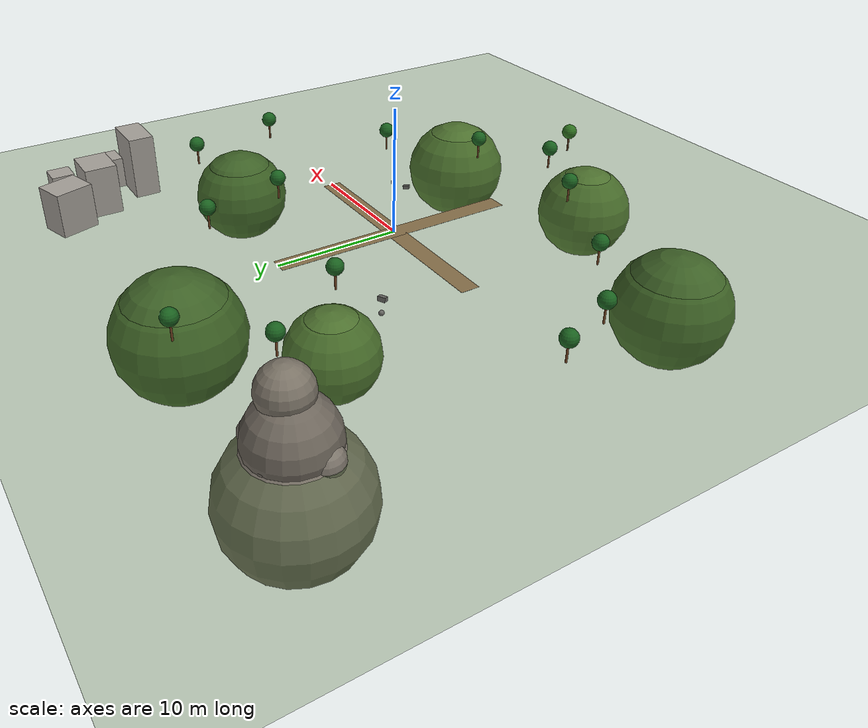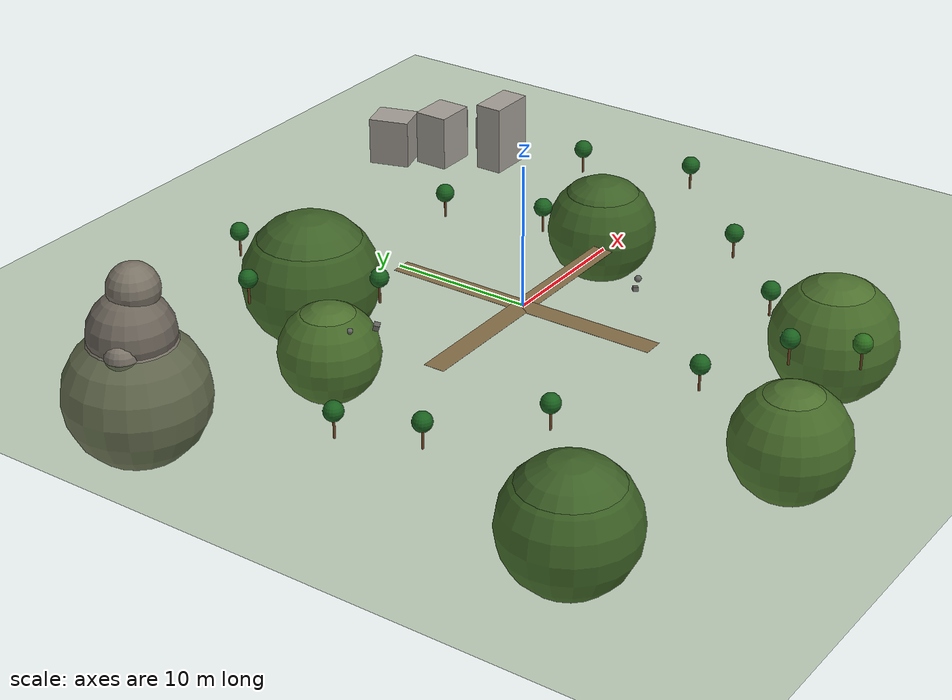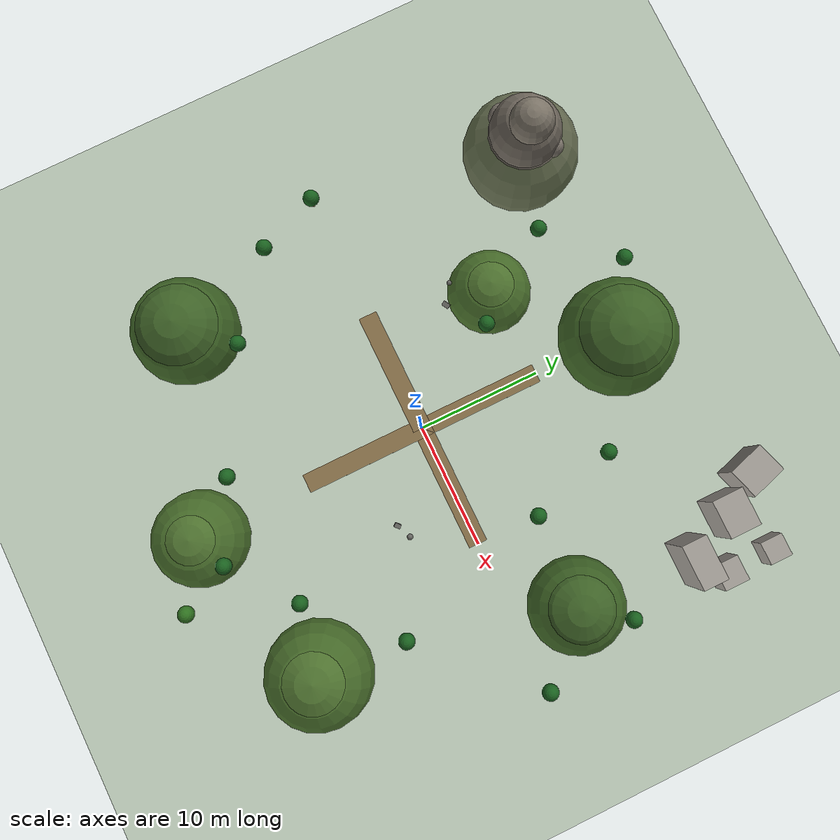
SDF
<?xml version="1.0" ?>
<sdf version="1.6">
  <world name="dah_outdoor">

    <physics name="1ms" type="ignored">
      <max_step_size>0.001</max_step_size>
      <real_time_factor>1.0</real_time_factor>
    </physics>

    <plugin filename="ignition-gazebo-physics-system"           name="gz::sim::systems::Physics"/>
    <plugin filename="ignition-gazebo-sensors-system"           name="gz::sim::systems::Sensors"/>
    <plugin filename="ignition-gazebo-scene-broadcaster-system" name="gz::sim::systems::SceneBroadcaster"/>
    <plugin filename="ignition-gazebo-user-commands-system"     name="gz::sim::systems::UserCommands"/>
    <plugin filename="ignition-gazebo-imu-system"               name="gz::sim::systems::Imu"/>
    <plugin filename="ignition-gazebo-contact-system"           name="gz::sim::systems::Contact"/>

    <spherical_coordinates>
      <surface_model>EARTH_WGS84</surface_model>
      <world_frame_orientation>ENU</world_frame_orientation>
      <latitude_deg>37.5665</latitude_deg>
      <longitude_deg>126.9780</longitude_deg>
      <elevation>50</elevation>
      <heading_deg>0</heading_deg>
    </spherical_coordinates>

    <light type="directional" name="sun">
      <cast_shadows>true</cast_shadows>
      <pose>0 0 30 0 0 0</pose>
      <diffuse>1.0 0.95 0.85 1</diffuse>
      <specular>0.2 0.2 0.2 1</specular>
      <direction>-0.4 0.2 -0.8</direction>
    </light>

    <!-- Ground plane 50x50m -->
    <model name="ground_plane">
      <static>true</static>
      <link name="link">
        <collision name="col">
          <geometry>
            <plane><normal>0 0 1</normal><size>50 50</size></plane>
          </geometry>
        </collision>
        <visual name="vis">
          <geometry>
            <plane><normal>0 0 1</normal><size>50 50</size></plane>
          </geometry>
          <material>
            <ambient>0.25 0.40 0.15 1</ambient>
            <diffuse>0.27 0.42 0.17 1</diffuse>
          </material>
        </visual>
      </link>
    </model>

    <!-- 아래부터 hills, trees, rocks, paths 모델 추가 -->
    <!-- 절대로 두 model 태그를 겹치거나 하나의 model 안에 다른 model 열지 말 것 -->

    <model name="hill_north">
      <static>true</static>
      <pose>0 18 -3.3 0 0 0</pose>
      <link name="link">
        <collision name="col">
          <geometry>
            <sphere><radius>5.0</radius></sphere>
          </geometry>
        </collision>
        <visual name="vis">
          <geometry>
            <sphere><radius>5.0</radius></sphere>
          </geometry>
          <material>
            <ambient>0.22 0.36 0.13 1</ambient>
            <diffuse>0.24 0.38 0.15 1</diffuse>
          </material>
        </visual>
      </link>
    </model>

    <model name="hill_sw">
      <static>true</static>
      <pose>-16 -14 -3.0 0 0 0</pose>
      <link name="link">
        <collision name="col">
          <geometry>
            <sphere><radius>4.5</radius></sphere>
          </geometry>
        </collision>
        <visual name="vis">
          <geometry>
            <sphere><radius>4.5</radius></sphere>
          </geometry>
          <material>
            <ambient>0.22 0.36 0.13 1</ambient>
            <diffuse>0.24 0.38 0.15 1</diffuse>
          </material>
        </visual>
      </link>
    </model>

    <model name="hill_east">
      <static>true</static>
      <pose>18 5 -3.0 0 0 0</pose>
      <link name="link">
        <collision name="col">
          <geometry>
            <sphere><radius>4.0</radius></sphere>
          </geometry>
        </collision>
        <visual name="vis">
          <geometry>
            <sphere><radius>4.0</radius></sphere>
          </geometry>
          <material>
            <ambient>0.22 0.36 0.13 1</ambient>
            <diffuse>0.24 0.38 0.15 1</diffuse>
          </material>
        </visual>
      </link>
    </model>

    <model name="tree_01">
      <static>true</static>
      <pose>8 12 0 0 0 0</pose>
      <link name="trunk">
        <pose>0 0 0.7 0 0 0</pose>
        <collision name="col">
          <geometry>
            <cylinder><radius>0.08</radius><length>1.4</length></cylinder>
          </geometry>
        </collision>
        <visual name="vis">
          <geometry>
            <cylinder><radius>0.08</radius><length>1.4</length></cylinder>
          </geometry>
          <material>
            <ambient>0.36 0.22 0.10 1</ambient>
            <diffuse>0.42 0.25 0.12 1</diffuse>
          </material>
        </visual>
      </link>
      <link name="canopy">
        <pose>0 0 1.85 0 0 0</pose>
        <collision name="col">
          <geometry>
            <sphere><radius>0.65</radius></sphere>
          </geometry>
        </collision>
        <visual name="vis">
          <geometry>
            <sphere><radius>0.65</radius></sphere>
          </geometry>
          <material>
            <ambient>0.08 0.32 0.10 1</ambient>
            <diffuse>0.10 0.38 0.12 1</diffuse>
          </material>
        </visual>
      </link>
    </model>

    <model name="tree_02">
      <static>true</static>
      <pose>-10 15 0 0 0 0</pose>
      <link name="trunk">
        <pose>0 0 0.7 0 0 0</pose>
        <collision name="col">
          <geometry>
            <cylinder><radius>0.08</radius><length>1.4</length></cylinder>
          </geometry>
        </collision>
        <visual name="vis">
          <geometry>
            <cylinder><radius>0.08</radius><length>1.4</length></cylinder>
          </geometry>
          <material>
            <ambient>0.36 0.22 0.10 1</ambient>
            <diffuse>0.42 0.25 0.12 1</diffuse>
          </material>
        </visual>
      </link>
      <link name="canopy">
        <pose>0 0 1.85 0 0 0</pose>
        <collision name="col">
          <geometry>
            <sphere><radius>0.65</radius></sphere>
          </geometry>
        </collision>
        <visual name="vis">
          <geometry>
            <sphere><radius>0.65</radius></sphere>
          </geometry>
          <material>
            <ambient>0.08 0.32 0.10 1</ambient>
            <diffuse>0.10 0.38 0.12 1</diffuse>
          </material>
        </visual>
      </link>
    </model>

    <model name="tree_03">
      <static>true</static>
      <pose>14 -8 0 0 0 0</pose>
      <link name="trunk">
        <pose>0 0 0.7 0 0 0</pose>
        <collision name="col">
          <geometry>
            <cylinder><radius>0.08</radius><length>1.4</length></cylinder>
          </geometry>
        </collision>
        <visual name="vis">
          <geometry>
            <cylinder><radius>0.08</radius><length>1.4</length></cylinder>
          </geometry>
          <material>
            <ambient>0.36 0.22 0.10 1</ambient>
            <diffuse>0.42 0.25 0.12 1</diffuse>
          </material>
        </visual>
      </link>
      <link name="canopy">
        <pose>0 0 1.85 0 0 0</pose>
        <collision name="col">
          <geometry>
            <sphere><radius>0.65</radius></sphere>
          </geometry>
        </collision>
        <visual name="vis">
          <geometry>
            <sphere><radius>0.65</radius></sphere>
          </geometry>
          <material>
            <ambient>0.08 0.32 0.10 1</ambient>
            <diffuse>0.10 0.38 0.12 1</diffuse>
          </material>
        </visual>
      </link>
    </model>

    <model name="tree_04">
      <static>true</static>
      <pose>-12 -10 0 0 0 0</pose>
      <link name="trunk">
        <pose>0 0 0.7 0 0 0</pose>
        <collision name="col">
          <geometry>
            <cylinder><radius>0.08</radius><length>1.4</length></cylinder>
          </geometry>
        </collision>
        <visual name="vis">
          <geometry>
            <cylinder><radius>0.08</radius><length>1.4</length></cylinder>
          </geometry>
          <material>
            <ambient>0.36 0.22 0.10 1</ambient>
            <diffuse>0.42 0.25 0.12 1</diffuse>
          </material>
        </visual>
      </link>
      <link name="canopy">
        <pose>0 0 1.85 0 0 0</pose>
        <collision name="col">
          <geometry>
            <sphere><radius>0.65</radius></sphere>
          </geometry>
        </collision>
        <visual name="vis">
          <geometry>
            <sphere><radius>0.65</radius></sphere>
          </geometry>
          <material>
            <ambient>0.08 0.32 0.10 1</ambient>
            <diffuse>0.10 0.38 0.12 1</diffuse>
          </material>
        </visual>
      </link>
    </model>

    <model name="tree_05">
      <static>true</static>
      <pose>3 -18 0 0 0 0</pose>
      <link name="trunk">
        <pose>0 0 0.7 0 0 0</pose>
        <collision name="col">
          <geometry>
            <cylinder><radius>0.08</radius><length>1.4</length></cylinder>
          </geometry>
        </collision>
        <visual name="vis">
          <geometry>
            <cylinder><radius>0.08</radius><length>1.4</length></cylinder>
          </geometry>
          <material>
            <ambient>0.36 0.22 0.10 1</ambient>
            <diffuse>0.42 0.25 0.12 1</diffuse>
          </material>
        </visual>
      </link>
      <link name="canopy">
        <pose>0 0 1.85 0 0 0</pose>
        <collision name="col">
          <geometry>
            <sphere><radius>0.65</radius></sphere>
          </geometry>
        </collision>
        <visual name="vis">
          <geometry>
            <sphere><radius>0.65</radius></sphere>
          </geometry>
          <material>
            <ambient>0.08 0.32 0.10 1</ambient>
            <diffuse>0.10 0.38 0.12 1</diffuse>
          </material>
        </visual>
      </link>
    </model>

    <model name="rock_01">
      <static>true</static>
      <pose>6 -5 0.16 0.1 0.2 0.7</pose>
      <link name="link">
        <collision name="col">
          <geometry>
            <box><size>0.50 0.35 0.30</size></box>
          </geometry>
        </collision>
        <visual name="vis">
          <geometry>
            <box><size>0.50 0.35 0.30</size></box>
          </geometry>
          <material>
            <ambient>0.34 0.34 0.32 1</ambient>
            <diffuse>0.40 0.40 0.38 1</diffuse>
          </material>
        </visual>
      </link>
    </model>

    <model name="rock_02">
      <static>true</static>
      <pose>7.2 -4.5 0.24 0 0.15 1.3</pose>
      <link name="link">
        <collision name="col">
          <geometry>
            <sphere><radius>0.24</radius></sphere>
          </geometry>
        </collision>
        <visual name="vis">
          <geometry>
            <sphere><radius>0.24</radius></sphere>
          </geometry>
          <material>
            <ambient>0.34 0.34 0.32 1</ambient>
            <diffuse>0.40 0.40 0.38 1</diffuse>
          </material>
        </visual>
      </link>
    </model>

    <model name="rock_03">
      <static>true</static>
      <pose>-8 6 0.19 0.2 0 0.5</pose>
      <link name="link">
        <collision name="col">
          <geometry>
            <box><size>0.60 0.40 0.35</size></box>
          </geometry>
        </collision>
        <visual name="vis">
          <geometry>
            <box><size>0.60 0.40 0.35</size></box>
          </geometry>
          <material>
            <ambient>0.34 0.34 0.32 1</ambient>
            <diffuse>0.40 0.40 0.38 1</diffuse>
          </material>
        </visual>
      </link>
    </model>

    <model name="rock_04">
      <static>true</static>
      <pose>-9.5 7 0.20 0 0.1 2.1</pose>
      <link name="link">
        <collision name="col">
          <geometry>
            <sphere><radius>0.20</radius></sphere>
          </geometry>
        </collision>
        <visual name="vis">
          <geometry>
            <sphere><radius>0.20</radius></sphere>
          </geometry>
          <material>
            <ambient>0.34 0.34 0.32 1</ambient>
            <diffuse>0.40 0.40 0.38 1</diffuse>
          </material>
        </visual>
      </link>
    </model>

    <model name="path_ns">
      <static>true</static>
      <pose>0 0 0.005 0 0 0</pose>
      <link name="link">
        <collision name="col">
          <geometry>
            <box><size>1.5 20.0 0.01</size></box>
          </geometry>
        </collision>
        <visual name="vis">
          <geometry>
            <box><size>1.5 20.0 0.01</size></box>
          </geometry>
          <material>
            <ambient>0.52 0.43 0.28 1</ambient>
            <diffuse>0.52 0.43 0.28 1</diffuse>
          </material>
        </visual>
      </link>
    </model>

    <model name="path_ew">
      <static>true</static>
      <pose>0 0 0.005 0 0 1.5708</pose>
      <link name="link">
        <collision name="col">
          <geometry>
            <box><size>1.5 20.0 0.01</size></box>
          </geometry>
        </collision>
        <visual name="vis">
          <geometry>
            <box><size>1.5 20.0 0.01</size></box>
          </geometry>
          <material>
            <ambient>0.52 0.43 0.28 1</ambient>
            <diffuse>0.52 0.43 0.28 1</diffuse>
          </material>
        </visual>
      </link>
    </model>

    <model name="building_01">
      <static>true</static>
      <pose>16 18 2.0 0 0 0</pose>
      <link name="link">
        <collision name="col">
          <geometry>
            <box><size>3.0 2.5 4.0</size></box>
          </geometry>
        </collision>
        <visual name="vis">
          <geometry>
            <box><size>3.0 2.5 4.0</size></box>
          </geometry>
          <material>
            <ambient>0.60 0.58 0.55 1</ambient>
            <diffuse>0.64 0.62 0.59 1</diffuse>
          </material>
        </visual>
      </link>
    </model>

    <model name="building_02">
      <static>true</static>
      <pose>20 16 1.25 0 0 0</pose>
      <link name="link">
        <collision name="col">
          <geometry>
            <box><size>2.0 2.0 2.5</size></box>
          </geometry>
        </collision>
        <visual name="vis">
          <geometry>
            <box><size>2.0 2.0 2.5</size></box>
          </geometry>
          <material>
            <ambient>0.60 0.58 0.55 1</ambient>
            <diffuse>0.64 0.62 0.59 1</diffuse>
          </material>
        </visual>
      </link>
    </model>

    <model name="building_03">
      <static>true</static>
      <pose>14 21 1.75 0 0 0.3</pose>
      <link name="link">
        <collision name="col">
          <geometry>
            <box><size>2.5 3.0 3.5</size></box>
          </geometry>
        </collision>
        <visual name="vis">
          <geometry>
            <box><size>2.5 3.0 3.5</size></box>
          </geometry>
          <material>
            <ambient>0.60 0.58 0.55 1</ambient>
            <diffuse>0.64 0.62 0.59 1</diffuse>
          </material>
        </visual>
      </link>
    </model>

    <model name="building_04">
      <static>true</static>
      <pose>20 20 1.0 0 0 0</pose>
      <link name="link">
        <collision name="col">
          <geometry>
            <box><size>1.8 1.8 2.0</size></box>
          </geometry>
        </collision>
        <visual name="vis">
          <geometry>
            <box><size>1.8 1.8 2.0</size></box>
          </geometry>
          <material>
            <ambient>0.60 0.58 0.55 1</ambient>
            <diffuse>0.64 0.62 0.59 1</diffuse>
          </material>
        </visual>
      </link>
    </model>

    <model name="building_05">
      <static>true</static>
      <pose>18 14 2.5 0 0 0</pose>
      <link name="link">
        <collision name="col">
          <geometry>
            <box><size>3.5 2.0 5.0</size></box>
          </geometry>
        </collision>
        <visual name="vis">
          <geometry>
            <box><size>3.5 2.0 5.0</size></box>
          </geometry>
          <material>
            <ambient>0.60 0.58 0.55 1</ambient>
            <diffuse>0.64 0.62 0.59 1</diffuse>
          </material>
        </visual>
      </link>
    </model>

    <model name="mountain_rock_a">
      <static>true</static>
      <pose>-20 17 0.0 0 0 0</pose>
      <link name="link">
        <collision name="col">
          <geometry>
            <sphere><radius>1.2</radius></sphere>
          </geometry>
        </collision>
        <visual name="vis">
          <geometry>
            <sphere><radius>1.2</radius></sphere>
          </geometry>
          <material>
            <ambient>0.45 0.42 0.38 1</ambient>
            <diffuse>0.49 0.46 0.42 1</diffuse>
          </material>
        </visual>
      </link>
    </model>

    <model name="mountain_rock_b">
      <static>true</static>
      <pose>-16 19.5 0.2 0 0 0</pose>
      <link name="link">
        <collision name="col">
          <geometry>
            <sphere><radius>0.9</radius></sphere>
          </geometry>
        </collision>
        <visual name="vis">
          <geometry>
            <sphere><radius>0.9</radius></sphere>
          </geometry>
          <material>
            <ambient>0.45 0.42 0.38 1</ambient>
            <diffuse>0.49 0.46 0.42 1</diffuse>
          </material>
        </visual>
      </link>
    </model>

    <model name="mountain_rock_c">
      <static>true</static>
      <pose>-19 20 0.1 0 0 0</pose>
      <link name="link">
        <collision name="col">
          <geometry>
            <sphere><radius>0.7</radius></sphere>
          </geometry>
        </collision>
        <visual name="vis">
          <geometry>
            <sphere><radius>0.7</radius></sphere>
          </geometry>
          <material>
            <ambient>0.45 0.42 0.38 1</ambient>
            <diffuse>0.49 0.46 0.42 1</diffuse>
          </material>
        </visual>
      </link>
    </model>

    <model name="hill_south">
      <static>true</static>
      <pose>0 -20 -3.5 0 0 0</pose>
      <link name="link">
        <collision name="col">
          <geometry>
            <sphere><radius>4.0</radius></sphere>
          </geometry>
        </collision>
        <visual name="vis">
          <geometry>
            <sphere><radius>4.0</radius></sphere>
          </geometry>
          <material>
            <ambient>0.28 0.42 0.16 1</ambient>
            <diffuse>0.30 0.44 0.18 1</diffuse>
          </material>
        </visual>
      </link>
    </model>

    <model name="hill_nw">
      <static>true</static>
      <pose>-8 10 -3.0 0 0 0</pose>
      <link name="link">
        <collision name="col">
          <geometry>
            <sphere><radius>3.5</radius></sphere>
          </geometry>
        </collision>
        <visual name="vis">
          <geometry>
            <sphere><radius>3.5</radius></sphere>
          </geometry>
          <material>
            <ambient>0.28 0.42 0.16 1</ambient>
            <diffuse>0.30 0.44 0.18 1</diffuse>
          </material>
        </visual>
      </link>
    </model>

    <model name="hill_se">
      <static>true</static>
      <pose>14 -16 -3.8 0 0 0</pose>
      <link name="link">
        <collision name="col">
          <geometry>
            <sphere><radius>4.5</radius></sphere>
          </geometry>
        </collision>
        <visual name="vis">
          <geometry>
            <sphere><radius>4.5</radius></sphere>
          </geometry>
          <material>
            <ambient>0.28 0.42 0.16 1</ambient>
            <diffuse>0.30 0.44 0.18 1</diffuse>
          </material>
        </visual>
      </link>
    </model>

    <model name="tree_06">
      <static>true</static>
      <pose>-5 20 0 0 0 0</pose>
      <link name="trunk">
        <pose>0 0 0.7 0 0 0</pose>
        <collision name="col">
          <geometry>
            <cylinder><radius>0.08</radius><length>1.4</length></cylinder>
          </geometry>
        </collision>
        <visual name="vis">
          <geometry>
            <cylinder><radius>0.08</radius><length>1.4</length></cylinder>
          </geometry>
          <material>
            <ambient>0.36 0.22 0.10 1</ambient>
            <diffuse>0.42 0.25 0.12 1</diffuse>
          </material>
        </visual>
      </link>
      <link name="canopy">
        <pose>0 0 1.85 0 0 0</pose>
        <collision name="col">
          <geometry>
            <sphere><radius>0.65</radius></sphere>
          </geometry>
        </collision>
        <visual name="vis">
          <geometry>
            <sphere><radius>0.65</radius></sphere>
          </geometry>
          <material>
            <ambient>0.08 0.32 0.10 1</ambient>
            <diffuse>0.10 0.38 0.12 1</diffuse>
          </material>
        </visual>
      </link>
    </model>

    <!-- Rocky mountain main shape -->
    <model name="mountain_base">
      <static>true</static>
      <pose>-18 18 -4.0 0 0 0</pose>
      <link name="link">
        <collision name="col"><geometry><sphere><radius>5.0</radius></sphere></geometry></collision>
        <visual name="vis">
          <geometry><sphere><radius>5.0</radius></sphere></geometry>
          <material><ambient>0.45 0.42 0.38 1</ambient><diffuse>0.45 0.42 0.38 1</diffuse></material>
        </visual>
      </link>
    </model>

    <model name="mountain_mid">
      <static>true</static>
      <pose>-18 18 0.5 0 0 0</pose>
      <link name="link">
        <collision name="col"><geometry><sphere><radius>3.0</radius></sphere></geometry></collision>
        <visual name="vis">
          <geometry><sphere><radius>3.0</radius></sphere></geometry>
          <material><ambient>0.43 0.40 0.36 1</ambient><diffuse>0.43 0.40 0.36 1</diffuse></material>
        </visual>
      </link>
    </model>

    <model name="mountain_peak">
      <static>true</static>
      <pose>-17.5 18 3.5 0 0 0</pose>
      <link name="link">
        <collision name="col"><geometry><sphere><radius>1.8</radius></sphere></geometry></collision>
        <visual name="vis">
          <geometry><sphere><radius>1.8</radius></sphere></geometry>
          <material><ambient>0.48 0.45 0.40 1</ambient><diffuse>0.48 0.45 0.40 1</diffuse></material>
        </visual>
      </link>
    </model>

    <!-- tree_07 -->
    <model name="tree_07">
      <static>true</static>
      <pose>5 -22 0 0 0 0</pose>
      <link name="trunk">
        <pose>0 0 0.7 0 0 0</pose>
        <collision name="col"><geometry><cylinder><radius>0.08</radius><length>1.4</length></cylinder></geometry></collision>
        <visual name="vis">
          <geometry><cylinder><radius>0.08</radius><length>1.4</length></cylinder></geometry>
          <material><ambient>0.35 0.22 0.10 1</ambient><diffuse>0.35 0.22 0.10 1</diffuse></material>
        </visual>
      </link>
      <link name="canopy">
        <pose>0 0 1.85 0 0 0</pose>
        <collision name="col"><geometry><sphere><radius>0.65</radius></sphere></geometry></collision>
        <visual name="vis">
          <geometry><sphere><radius>0.65</radius></sphere></geometry>
          <material><ambient>0.18 0.44 0.12 1</ambient><diffuse>0.18 0.44 0.12 1</diffuse></material>
        </visual>
      </link>
    </model>

    <model name="tree_08">
      <static>true</static>
      <pose>-20 0 0 0 0 0</pose>
      <link name="trunk">
        <pose>0 0 0.7 0 0 0</pose>
        <collision name="col">
          <geometry>
            <cylinder><radius>0.08</radius><length>1.4</length></cylinder>
          </geometry>
        </collision>
        <visual name="vis">
          <geometry>
            <cylinder><radius>0.08</radius><length>1.4</length></cylinder>
          </geometry>
          <material>
            <ambient>0.36 0.22 0.10 1</ambient>
            <diffuse>0.42 0.25 0.12 1</diffuse>
          </material>
        </visual>
      </link>
      <link name="canopy">
        <pose>0 0 1.85 0 0 0</pose>
        <collision name="col">
          <geometry>
            <sphere><radius>0.65</radius></sphere>
          </geometry>
        </collision>
        <visual name="vis">
          <geometry>
            <sphere><radius>0.65</radius></sphere>
          </geometry>
          <material>
            <ambient>0.08 0.32 0.10 1</ambient>
            <diffuse>0.10 0.38 0.12 1</diffuse>
          </material>
        </visual>
      </link>
    </model>

    <model name="tree_09">
      <static>true</static>
      <pose>22 0 0 0 0 0</pose>
      <link name="trunk">
        <pose>0 0 0.7 0 0 0</pose>
        <collision name="col">
          <geometry>
            <cylinder><radius>0.08</radius><length>1.4</length></cylinder>
          </geometry>
        </collision>
        <visual name="vis">
          <geometry>
            <cylinder><radius>0.08</radius><length>1.4</length></cylinder>
          </geometry>
          <material>
            <ambient>0.36 0.22 0.10 1</ambient>
            <diffuse>0.42 0.25 0.12 1</diffuse>
          </material>
        </visual>
      </link>
      <link name="canopy">
        <pose>0 0 1.85 0 0 0</pose>
        <collision name="col">
          <geometry>
            <sphere><radius>0.65</radius></sphere>
          </geometry>
        </collision>
        <visual name="vis">
          <geometry>
            <sphere><radius>0.65</radius></sphere>
          </geometry>
          <material>
            <ambient>0.08 0.32 0.10 1</ambient>
            <diffuse>0.10 0.38 0.12 1</diffuse>
          </material>
        </visual>
      </link>
    </model>

    <model name="tree_10">
      <static>true</static>
      <pose>-3 -15 0 0 0 0</pose>
      <link name="trunk">
        <pose>0 0 0.7 0 0 0</pose>
        <collision name="col">
          <geometry>
            <cylinder><radius>0.08</radius><length>1.4</length></cylinder>
          </geometry>
        </collision>
        <visual name="vis">
          <geometry>
            <cylinder><radius>0.08</radius><length>1.4</length></cylinder>
          </geometry>
          <material>
            <ambient>0.36 0.22 0.10 1</ambient>
            <diffuse>0.42 0.25 0.12 1</diffuse>
          </material>
        </visual>
      </link>
      <link name="canopy">
        <pose>0 0 1.85 0 0 0</pose>
        <collision name="col">
          <geometry>
            <sphere><radius>0.65</radius></sphere>
          </geometry>
        </collision>
        <visual name="vis">
          <geometry>
            <sphere><radius>0.65</radius></sphere>
          </geometry>
          <material>
            <ambient>0.08 0.32 0.10 1</ambient>
            <diffuse>0.10 0.38 0.12 1</diffuse>
          </material>
        </visual>
      </link>
    </model>

    <model name="tree_11">
      <static>true</static>
      <pose>10 5 0 0 0 0</pose>
      <link name="trunk">
        <pose>0 0 0.7 0 0 0</pose>
        <collision name="col">
          <geometry>
            <cylinder><radius>0.08</radius><length>1.4</length></cylinder>
          </geometry>
        </collision>
        <visual name="vis">
          <geometry>
            <cylinder><radius>0.08</radius><length>1.4</length></cylinder>
          </geometry>
          <material>
            <ambient>0.36 0.22 0.10 1</ambient>
            <diffuse>0.42 0.25 0.12 1</diffuse>
          </material>
        </visual>
      </link>
      <link name="canopy">
        <pose>0 0 1.85 0 0 0</pose>
        <collision name="col">
          <geometry>
            <sphere><radius>0.65</radius></sphere>
          </geometry>
        </collision>
        <visual name="vis">
          <geometry>
            <sphere><radius>0.65</radius></sphere>
          </geometry>
          <material>
            <ambient>0.08 0.32 0.10 1</ambient>
            <diffuse>0.10 0.38 0.12 1</diffuse>
          </material>
        </visual>
      </link>
    </model>

    <model name="tree_12">
      <static>true</static>
      <pose>-18 -5 0 0 0 0</pose>
      <link name="trunk">
        <pose>0 0 0.7 0 0 0</pose>
        <collision name="col">
          <geometry>
            <cylinder><radius>0.08</radius><length>1.4</length></cylinder>
          </geometry>
        </collision>
        <visual name="vis">
          <geometry>
            <cylinder><radius>0.08</radius><length>1.4</length></cylinder>
          </geometry>
          <material>
            <ambient>0.36 0.22 0.10 1</ambient>
            <diffuse>0.42 0.25 0.12 1</diffuse>
          </material>
        </visual>
      </link>
      <link name="canopy">
        <pose>0 0 1.85 0 0 0</pose>
        <collision name="col">
          <geometry>
            <sphere><radius>0.65</radius></sphere>
          </geometry>
        </collision>
        <visual name="vis">
          <geometry>
            <sphere><radius>0.65</radius></sphere>
          </geometry>
          <material>
            <ambient>0.08 0.32 0.10 1</ambient>
            <diffuse>0.10 0.38 0.12 1</diffuse>
          </material>
        </visual>
      </link>
    </model>

    <model name="tree_13">
      <static>true</static>
      <pose>8 -14 0 0 0 0</pose>
      <link name="trunk">
        <pose>0 0 0.7 0 0 0</pose>
        <collision name="col">
          <geometry>
            <cylinder><radius>0.08</radius><length>1.4</length></cylinder>
          </geometry>
        </collision>
        <visual name="vis">
          <geometry>
            <cylinder><radius>0.08</radius><length>1.4</length></cylinder>
          </geometry>
          <material>
            <ambient>0.36 0.22 0.10 1</ambient>
            <diffuse>0.42 0.25 0.12 1</diffuse>
          </material>
        </visual>
      </link>
      <link name="canopy">
        <pose>0 0 1.85 0 0 0</pose>
        <collision name="col">
          <geometry>
            <sphere><radius>0.65</radius></sphere>
          </geometry>
        </collision>
        <visual name="vis">
          <geometry>
            <sphere><radius>0.65</radius></sphere>
          </geometry>
          <material>
            <ambient>0.08 0.32 0.10 1</ambient>
            <diffuse>0.10 0.38 0.12 1</diffuse>
          </material>
        </visual>
      </link>
    </model>

    <model name="tree_14">
      <static>true</static>
      <pose>-5 8 0 0 0 0</pose>
      <link name="trunk">
        <pose>0 0 0.7 0 0 0</pose>
        <collision name="col">
          <geometry>
            <cylinder><radius>0.08</radius><length>1.4</length></cylinder>
          </geometry>
        </collision>
        <visual name="vis">
          <geometry>
            <cylinder><radius>0.08</radius><length>1.4</length></cylinder>
          </geometry>
          <material>
            <ambient>0.36 0.22 0.10 1</ambient>
            <diffuse>0.42 0.25 0.12 1</diffuse>
          </material>
        </visual>
      </link>
      <link name="canopy">
        <pose>0 0 1.85 0 0 0</pose>
        <collision name="col">
          <geometry>
            <sphere><radius>0.65</radius></sphere>
          </geometry>
        </collision>
        <visual name="vis">
          <geometry>
            <sphere><radius>0.65</radius></sphere>
          </geometry>
          <material>
            <ambient>0.08 0.32 0.10 1</ambient>
            <diffuse>0.10 0.38 0.12 1</diffuse>
          </material>
        </visual>
      </link>
    </model>

    <model name="tree_15">
      <static>true</static>
      <pose>20 8 0 0 0 0</pose>
      <link name="trunk">
        <pose>0 0 0.7 0 0 0</pose>
        <collision name="col">
          <geometry>
            <cylinder><radius>0.08</radius><length>1.4</length></cylinder>
          </geometry>
        </collision>
        <visual name="vis">
          <geometry>
            <cylinder><radius>0.08</radius><length>1.4</length></cylinder>
          </geometry>
          <material>
            <ambient>0.36 0.22 0.10 1</ambient>
            <diffuse>0.42 0.25 0.12 1</diffuse>
          </material>
        </visual>
      </link>
      <link name="canopy">
        <pose>0 0 1.85 0 0 0</pose>
        <collision name="col">
          <geometry>
            <sphere><radius>0.65</radius></sphere>
          </geometry>
        </collision>
        <visual name="vis">
          <geometry>
            <sphere><radius>0.65</radius></sphere>
          </geometry>
          <material>
            <ambient>0.08 0.32 0.10 1</ambient>
            <diffuse>0.10 0.38 0.12 1</diffuse>
          </material>
        </visual>
      </link>
    </model>

  </world>
</sdf>
